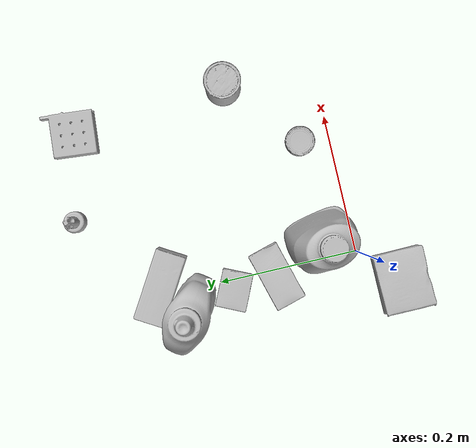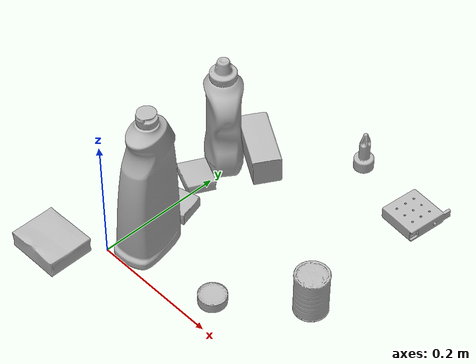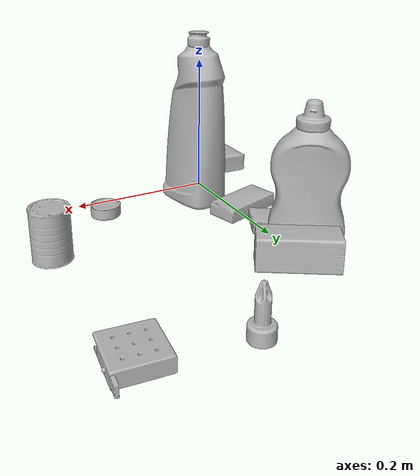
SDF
<sdf version="1.4">
  <world name="default">
    <light name="light1" type="point">
      <pose>0 0 1 0 0 0</pose>
      <diffuse>3 3 3 1</diffuse>
      <specular>3 3 3 1</specular>
    </light>
    <light name="light2" type="point">
      <pose>0 0.5 2 0 0 0</pose>
      <diffuse>1 1 1 1</diffuse>
      <specular>1 1 1 1</specular>
    </light>
    <light name="light3" type="point">
      <pose>0 0.5 2 0 0 0</pose>
      <diffuse>3 3 3 1</diffuse>
      <specular>3 3 3 1</specular>
    </light>
    <scene>
      <ambient>0.7 0.7 0.7</ambient>
    </scene>
    <model name="bottle1">
      <link name="link_bottle1">
        <collision name="default">
          <geometry>
            <mesh>
              <uri>model://mustard_bottle/collision_meshes/collision.obj</uri>
              <scale>1.0 1.0 1.0</scale>
            </mesh>
          </geometry>
          <surface>
            <friction>
              <ode>
                <mu>0.5</mu>
                <mu2>0.5</mu2>
              </ode>
            </friction>
          <contact>
        <ode>
            <max_vel>0</max_vel>
            <min_depth>0.0001</min_depth>
            <kp>1e8</kp>
        </ode>
    </contact></surface>
        </collision>
        <visual name="default">
          <geometry>
            <mesh>
              <uri>model://mustard_bottle/visual_meshes/visual.dae</uri>
              <scale>1.0 1.0 1.0</scale>
            </mesh>
          </geometry>
        </visual>
        <inertial>
          <mass>0.9814921021461487</mass>
          <pose>0.000503245391882956 -0.00015647400869056582 -0.0174757968634367 0.00041823298570721707 0.000946579165099878 0.024853733541460008</pose>
          <inertia>
            <ixx>0.0027254699</ixx>
            <iyy>0.0023913688</iyy>
            <izz>0.0007182988</izz>
            <ixy>0</ixy>
            <ixz>0</ixz>
            <iyz>0</iyz>
          </inertia>
        </inertial>
      </link>
      <pose>-0.02309488318860531 0.24687460064888 0.09615202248096466 1.5440338100390486e-05 1.7417606921184248e-05 0.9337683659188916</pose>
    </model>
    <model name="bottle2">
      <link name="link_bottle2">
        <collision name="default">
          <geometry>
            <mesh>
              <uri>model://bleach_cleanser/collision_meshes/collision.obj</uri>
              <scale>1.0 1.0 1.0</scale>
            </mesh>
          </geometry>
          <surface>
            <friction>
              <ode>
                <mu>0.5</mu>
                <mu2>0.5</mu2>
              </ode>
            </friction>
          <contact>
        <ode>
            <max_vel>0</max_vel>
            <min_depth>0.0001</min_depth>
            <kp>1e8</kp>
        </ode>
    </contact></surface>
        </collision>
        <visual name="default">
          <geometry>
            <mesh>
              <uri>model://bleach_cleanser/visual_meshes/visual.dae</uri>
              <scale>1.0 1.0 1.0</scale>
            </mesh>
          </geometry>
        </visual>
        <inertial>
          <mass>0.5613878965377808</mass>
          <pose>0.00012193182919872925 0.0037838828284293413 -0.02442161738872528 -0.07381670616369514 0.00042011545192634117 -0.006875071107578698</pose>
          <inertia>
            <ixx>0.0027323565</ixx>
            <iyy>0.002546156</iyy>
            <izz>0.0004671619</izz>
            <ixy>0</ixy>
            <ixz>0</ixz>
            <iyz>0</iyz>
          </inertia>
        </inertial>
      </link>
      <pose>0.0335182249546051 0.04923781007528305 0.12578411400318146 -0.00019869783179968928 1.731720911016316e-05 0.17928157302827302</pose>
    </model>
    <model name="toy1">
      <link name="link_toy1">
        <collision name="default">
          <geometry>
            <mesh>
              <uri>model://nine_hole_peg_test/collision_meshes/collision.obj</uri>
              <scale>0.5 0.5 0.5</scale>
            </mesh>
          </geometry>
          <surface>
            <friction>
              <ode>
                <mu>0.5</mu>
                <mu2>0.5</mu2>
              </ode>
            </friction>
          <contact>
        <ode>
            <max_vel>0</max_vel>
            <min_depth>0.0001</min_depth>
            <kp>1e8</kp>
        </ode>
    </contact></surface>
        </collision>
        <visual name="default">
          <geometry>
            <mesh>
              <uri>model://nine_hole_peg_test/visual_meshes/visual.dae</uri>
              <scale>0.5 0.5 0.5</scale>
            </mesh>
          </geometry>
        </visual>
        <inertial>
          <mass>0.10001979023218155</mass>
          <pose>-0.002308693015947938 -0.0048238071613013744 1.323034393863054e-05 -0.001466679064329537 0.000719417562538249 -0.6342417933325166</pose>
          <inertia>
            <ixx>3.9099352e-05</ixx>
            <iyy>3.650665e-05</iyy>
            <izz>6.851359e-05</izz>
            <ixy>0</ixy>
            <ixz>0</ixz>
            <iyz>0</iyz>
          </inertia>
        </inertial>
      </link>
      <pose>0.26032519340515137 0.3619576692581177 0.010385503992438316 2.683342820908963e-08 8.725860945566409e-09 -0.08580268929029777</pose>
    </model>
    <model name="toy2">
      <link name="link_toy2">
        <collision name="default">
          <geometry>
            <mesh>
              <uri>model://d_toy_airplane/collision_meshes/collision.obj</uri>
              <scale>1.0 1.0 1.0</scale>
            </mesh>
          </geometry>
          <surface>
            <friction>
              <ode>
                <mu>0.5</mu>
                <mu2>0.5</mu2>
              </ode>
            </friction>
          <contact>
        <ode>
            <max_vel>0</max_vel>
            <min_depth>0.0001</min_depth>
            <kp>1e8</kp>
        </ode>
    </contact></surface>
        </collision>
        <visual name="default">
          <geometry>
            <mesh>
              <uri>model://d_toy_airplane/visual_meshes/visual.dae</uri>
              <scale>1.0 1.0 1.0</scale>
            </mesh>
          </geometry>
        </visual>
        <inertial>
          <mass>0.019254321232438087</mass>
          <pose>9.410314669366926e-05 -5.809308640891686e-05 -0.011728096753358841 0.0002669110283705203 0.00467899073598619 0.5194519611142697</pose>
          <inertia>
            <ixx>5.7720713e-06</ixx>
            <iyy>5.776424e-06</iyy>
            <izz>1.7426261e-06</izz>
            <ixy>0</ixy>
            <ixz>0</ixz>
            <iyz>0</iyz>
          </inertia>
        </inertial>
      </link>
      <pose>0.133921280503273 0.38456833362579346 0.03333915024995804 9.270522319238e-05 -7.842962051085338e-05 -1.1614043233929996</pose>
    </model>
    <model name="can1">
      <link name="link_can1">
        <collision name="default">
          <geometry>
            <mesh>
              <uri>model://master_chef_can/collision_meshes/collision.obj</uri>
              <scale>0.5 0.5 0.5</scale>
            </mesh>
          </geometry>
          <surface>
            <friction>
              <ode>
                <mu>0.5</mu>
                <mu2>0.5</mu2>
              </ode>
            </friction>
          <contact>
        <ode>
            <max_vel>0</max_vel>
            <min_depth>0.0001</min_depth>
            <kp>1e8</kp>
        </ode>
    </contact></surface>
        </collision>
        <visual name="default">
          <geometry>
            <mesh>
              <uri>model://master_chef_can/visual_meshes/visual.dae</uri>
              <scale>0.5 0.5 0.5</scale>
            </mesh>
          </geometry>
        </visual>
        <inertial>
          <mass>0.11909646540880203</mass>
          <pose>-4.661963976104744e-05 1.3926845099376806e-07 -5.07990553160198e-05 -0.0017995128948922 0.0006479239957886283 -0.6102624789319168</pose>
          <inertia>
            <ixx>6.990155e-05</ixx>
            <iyy>6.938709e-05</iyy>
            <izz>3.8625953e-05</izz>
            <ixy>0</ixy>
            <ixz>0</ixz>
            <iyz>0</iyz>
          </inertia>
        </inertial>
      </link>
      <pose>0.27392974495887756 0.13302208483219147 0.03530199080705643 -1.5898680019766149e-06 -1.0323925754236722e-06 -0.29355500430610965</pose>
    </model>
    <model name="can2">
      <link name="link_can2">
        <collision name="default">
          <geometry>
            <mesh>
              <uri>model://tuna_fish_can/collision_meshes/collision.obj</uri>
              <scale>0.5 0.5 0.5</scale>
            </mesh>
          </geometry>
          <surface>
            <friction>
              <ode>
                <mu>0.5</mu>
                <mu2>0.5</mu2>
              </ode>
            </friction>
          <contact>
        <ode>
            <max_vel>0</max_vel>
            <min_depth>0.0001</min_depth>
            <kp>1e8</kp>
        </ode>
    </contact></surface>
        </collision>
        <visual name="default">
          <geometry>
            <mesh>
              <uri>model://tuna_fish_can/visual_meshes/visual.dae</uri>
              <scale>0.5 0.5 0.5</scale>
            </mesh>
          </geometry>
        </visual>
        <inertial>
          <mass>0.019333453848958015</mass>
          <pose>-2.0361452698125504e-05 -7.256490789586678e-06 -0.0005269024986773729 -0.0017944786606280685 0.0001716327651594619 0.24054823336333434</pose>
          <inertia>
            <ixx>2.6139116e-06</ixx>
            <iyy>2.6030175e-06</iyy>
            <izz>4.4727767e-06</izz>
            <ixy>0</ixy>
            <ixz>0</ixz>
            <iyz>0</iyz>
          </inertia>
        </inertial>
      </link>
      <pose>0.1731884628534317 0.043120771646499634 0.008520001545548439 -2.0738400591829727e-08 -5.660730600668711e-10 2.086613584450099</pose>
    </model>
    <model name="box1">
      <link name="link_box1">
        <collision name="default">
          <geometry>
            <mesh>
              <uri>model://sugar_box/collision_meshes/collision.obj</uri>
              <scale>0.5 0.5 0.5</scale>
            </mesh>
          </geometry>
          <surface>
            <friction>
              <ode>
                <mu>0.5</mu>
                <mu2>0.5</mu2>
              </ode>
            </friction>
          <contact>
        <ode>
            <max_vel>0</max_vel>
            <min_depth>0.0001</min_depth>
            <kp>1e8</kp>
        </ode>
    </contact></surface>
        </collision>
        <visual name="default">
          <geometry>
            <mesh>
              <uri>model://sugar_box/visual_meshes/visual.dae</uri>
              <scale>0.5 0.5 0.5</scale>
            </mesh>
          </geometry>
        </visual>
        <inertial>
          <mass>0.11277332901954651</mass>
          <pose>0.0005171863595023751 1.924554817378521e-05 -0.0001818240125430748 -0.00040462603870476286 0.0010506635217257978 0.002615378323397263</pose>
          <inertia>
            <ixx>2.34906e-05</ixx>
            <iyy>7.592646e-05</iyy>
            <izz>9.089305e-05</izz>
            <ixy>0</ixy>
            <ixz>0</ixz>
            <iyz>0</iyz>
          </inertia>
        </inertial>
      </link>
      <pose>-0.007684299722313881 0.12014180421829224 0.011399303562939167 0.0007744784349774055 -0.023432999419291525 -2.8737184032291245</pose>
    </model>
    <model name="box2">
      <link name="link_box2">
        <collision name="default">
          <geometry>
            <mesh>
              <uri>model://gelatin_box/collision_meshes/collision.obj</uri>
              <scale>1.0 1.0 1.0</scale>
            </mesh>
          </geometry>
          <surface>
            <friction>
              <ode>
                <mu>0.5</mu>
                <mu2>0.5</mu2>
              </ode>
            </friction>
          <contact>
        <ode>
            <max_vel>0</max_vel>
            <min_depth>0.0001</min_depth>
            <kp>1e8</kp>
        </ode>
    </contact></surface>
        </collision>
        <visual name="default">
          <geometry>
            <mesh>
              <uri>model://gelatin_box/visual_meshes/visual.dae</uri>
              <scale>1.0 1.0 1.0</scale>
            </mesh>
          </geometry>
        </visual>
        <inertial>
          <mass>0.18825438618659973</mass>
          <pose>0.0004319618456065655 0.00011156871914863586 -0.0003640321083366871 -0.0010503720853528096 -0.004755817758068365 0.016440559471334753</pose>
          <inertia>
            <ixx>0.00013289225</ixx>
            <iyy>9.492423e-05</iyy>
            <izz>0.0002022916</izz>
            <ixy>0</ixy>
            <ixz>0</ixz>
            <iyz>0</iyz>
          </inertia>
        </inertial>
      </link>
      <pose>-0.05523524060845375 -0.05460939556360245 0.015168312937021255 0.005596659427171193 -0.007303701842934171 -1.5680711401736396</pose>
    </model>
    <model name="box3">
      <link name="link_box3">
        <collision name="default">
          <geometry>
            <mesh>
              <uri>model://wood_block/collision_meshes/collision.obj</uri>
              <scale>0.5 0.5 0.5</scale>
            </mesh>
          </geometry>
          <surface>
            <friction>
              <ode>
                <mu>0.5</mu>
                <mu2>0.5</mu2>
              </ode>
            </friction>
          <contact>
        <ode>
            <max_vel>0</max_vel>
            <min_depth>0.0001</min_depth>
            <kp>1e8</kp>
        </ode>
    </contact></surface>
        </collision>
        <visual name="default">
          <geometry>
            <mesh>
              <uri>model://wood_block/visual_meshes/visual.dae</uri>
              <scale>0.5 0.5 0.5</scale>
            </mesh>
          </geometry>
        </visual>
        <inertial>
          <mass>0.16905224323272705</mass>
          <pose>-2.906657982748584e-06 -0.00028540476341731846 0.00013204291462898254 -0.05220975529285028 -0.0051926941753174345 -0.0068613788950967446</pose>
          <inertia>
            <ixx>5.655437e-05</ixx>
            <iyy>0.00017865526</iyy>
            <izz>0.00017798702</izz>
            <ixy>0</ixy>
            <ixz>0</ixz>
            <iyz>0</iyz>
          </inertia>
        </inertial>
      </link>
      <pose>0.016283122822642326 0.28406304121017456 0.022527450695633888 -0.01585958657685076 -0.0004053816410900087 2.597208201059963</pose>
    </model>
    <model name="box4">
      <link name="link_box4">
        <collision name="default">
          <geometry>
            <mesh>
              <uri>model://pudding_box/collision_meshes/collision.obj</uri>
              <scale>0.5 0.5 0.5</scale>
            </mesh>
          </geometry>
          <surface>
            <friction>
              <ode>
                <mu>0.5</mu>
                <mu2>0.5</mu2>
              </ode>
            </friction>
          <contact>
        <ode>
            <max_vel>0</max_vel>
            <min_depth>0.0001</min_depth>
            <kp>1e8</kp>
        </ode>
    </contact></surface>
        </collision>
        <visual name="default">
          <geometry>
            <mesh>
              <uri>model://pudding_box/visual_meshes/visual.dae</uri>
              <scale>0.5 0.5 0.5</scale>
            </mesh>
          </geometry>
        </visual>
        <inertial>
          <mass>0.04372405260801315</mass>
          <pose>0.00024474109522998333 0.00040339428232982755 -0.00025944135268218815 0.005213099923843092 -0.006603798704775496 0.02007982702870814</pose>
          <inertia>
            <ixx>1.2356946e-05</ixx>
            <iyy>8.313842e-06</iyy>
            <izz>1.8248264e-05</izz>
            <ixy>0</ixy>
            <ixz>0</ixz>
            <iyz>0</iyz>
          </inertia>
        </inertial>
      </link>
      <pose>-0.0136631540954113 0.18418766558170319 0.009862903505563736 0.022348642125790755 -0.011391647001861743 -2.012804886234651</pose>
    </model>
  <physics type="ode">
      <max_contacts>50</max_contacts>
      <ode>
        <solver>
          <type>quick</type>
          <iters>75</iters>
        </solver>
        <constraints>
          <contact_max_correcting_vel>0</contact_max_correcting_vel>
          <contact_surface_layer>0</contact_surface_layer>
        </constraints>
      </ode>
    </physics></world>
</sdf>
